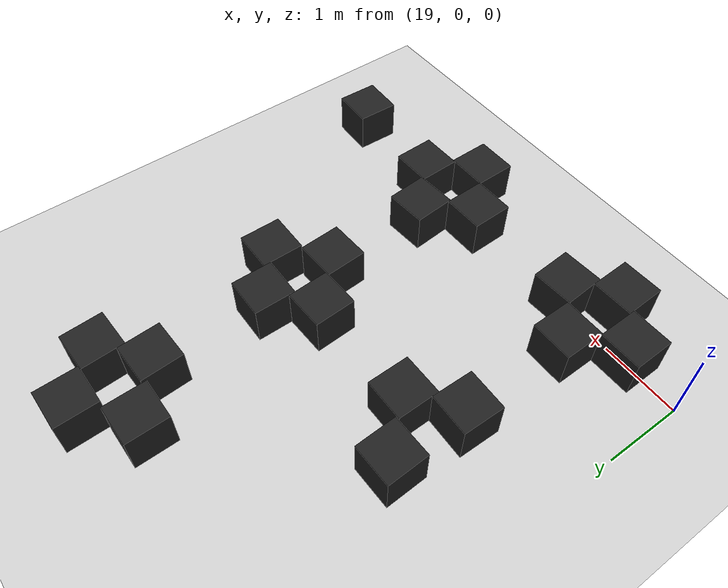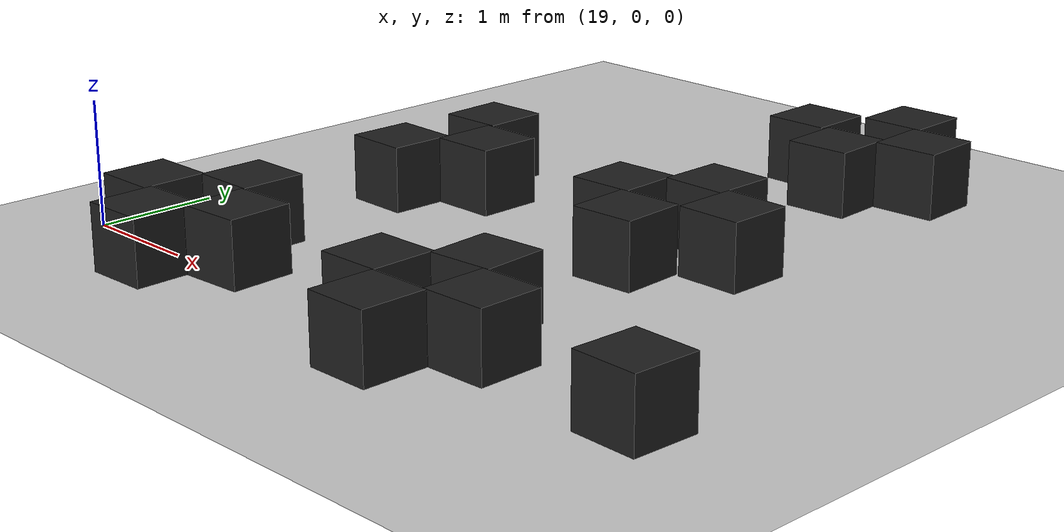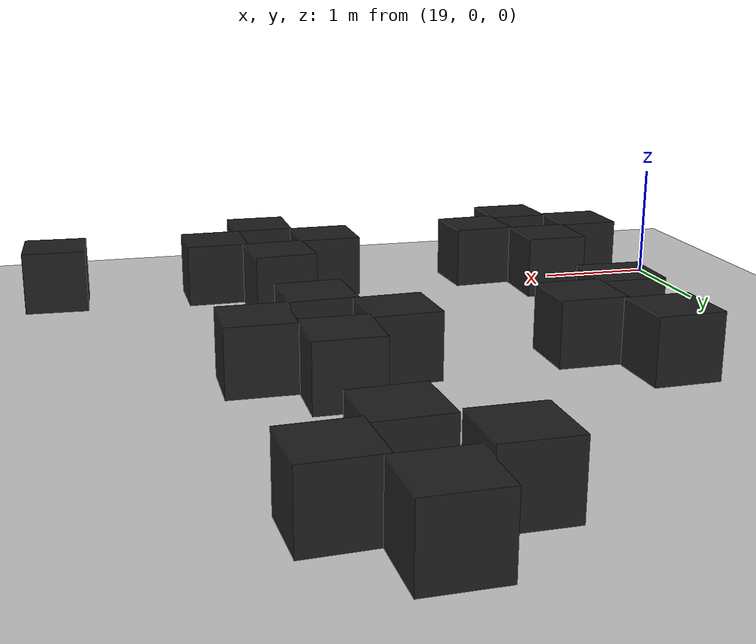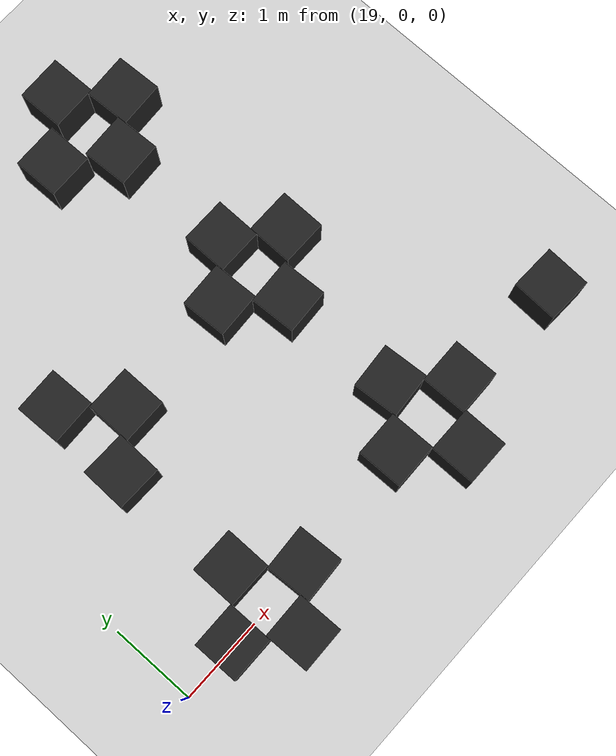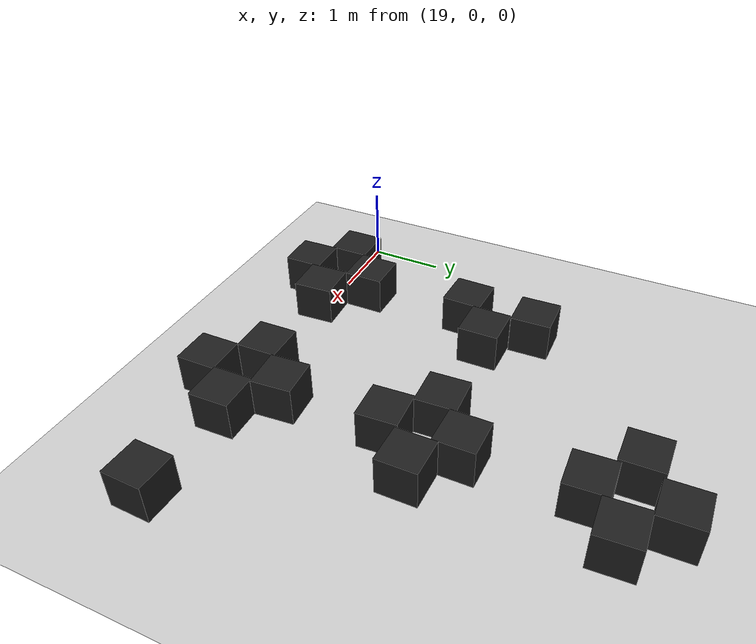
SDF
<sdf version="1.6">
 <world name="default">
  <model name="ground_plane">
   <static>1</static>
   <link name="link">
    <collision name="collision">
     <geometry><plane><normal>0 0 1</normal><size>100 100</size></plane></geometry>
     <surface>
      <contact><collide_bitmask>65535</collide_bitmask></contact>
      <friction><ode><mu>100</mu><mu2>50</mu2></ode></friction>
     </surface>
    </collision>
    <visual name="visual">
     <cast_shadows>0</cast_shadows>
     <geometry><plane><normal>0 0 1</normal><size>100 100</size></plane></geometry>
     <material>
      <script><uri>file://media/materials/scripts/gazebo.material</uri><name>Gazebo/Grey</name></script>
     </material>
    </visual>
   </link>
  </model>
  <model name="unit_box_0_clone_13">
   <link name="link">
    <inertial>
     <mass>1</mass>
     <inertia>
      <ixx>0.166667</ixx>
      <ixy>0</ixy>
      <ixz>0</ixz>
      <iyy>0.166667</iyy>
      <iyz>0</iyz>
      <izz>0.166667</izz>
     </inertia>
    </inertial>
    <visual name="visual">
     <geometry><box><size>0.530101 0.530101 0.530101</size></box></geometry>
     <material>
      <script><name>Gazebo/FlatBlack</name><uri>file://media/materials/scripts/gazebo.material</uri></script>
      <shader type="pixel"><normal_map>__default__</normal_map></shader>
      <ambient>0.1 0.1 0.1 1</ambient>
      <diffuse>0.1 0.1 0.1 1</diffuse>
      <specular>0.01 0.01 0.01 1</specular>
      <emissive>0 0 0 1</emissive>
     </material>
    </visual>
    <collision name="collision">
     <geometry><box><size>0.530101 0.530101 0.530101</size></box></geometry>
     <surface>
      <friction>
       <ode><mu>1</mu><mu2>1</mu2><fdir1>0 0 0</fdir1><slip1>0</slip1><slip2>0</slip2></ode>
       <torsional>
        <coefficient>1</coefficient>
        <patch_radius>0</patch_radius>
        <surface_radius>0</surface_radius>
        <use_patch_radius>1</use_patch_radius>
        <ode><slip>0</slip></ode>
       </torsional>
      </friction>
      <bounce><restitution_coefficient>0</restitution_coefficient><threshold>1e+06</threshold></bounce>
      <contact>
       <collide_without_contact>0</collide_without_contact>
       <collide_without_contact_bitmask>1</collide_without_contact_bitmask>
       <collide_bitmask>1</collide_bitmask>
       <ode>
        <soft_cfm>0</soft_cfm>
        <soft_erp>0.2</soft_erp>
        <kp>1e+13</kp>
        <kd>1</kd>
        <max_vel>0.01</max_vel>
        <min_depth>0</min_depth>
       </ode>
       <bullet>
        <split_impulse>1</split_impulse>
        <split_impulse_penetration_threshold>-0.01</split_impulse_penetration_threshold>
        <soft_cfm>0</soft_cfm>
        <soft_erp>0.2</soft_erp>
        <kp>1e+13</kp>
        <kd>1</kd>
       </bullet>
      </contact>
     </surface>
    </collision>
   </link>
   <static>0</static>
   <pose>22.1517 4.84185 0.314109 6e-06 -9e-06 0.013982</pose>
  </model>
  <model name="unit_box_0_clone_22_clone_14">
   <link name="link">
    <inertial>
     <mass>1</mass>
     <inertia>
      <ixx>0.166667</ixx>
      <ixy>0</ixy>
      <ixz>0</ixz>
      <iyy>0.166667</iyy>
      <iyz>0</iyz>
      <izz>0.166667</izz>
     </inertia>
    </inertial>
    <visual name="visual">
     <geometry><box><size>0.530101 0.530101 0.530101</size></box></geometry>
     <material>
      <script><name>Gazebo/FlatBlack</name><uri>file://media/materials/scripts/gazebo.material</uri></script>
      <shader type="pixel"><normal_map>__default__</normal_map></shader>
      <ambient>0.1 0.1 0.1 1</ambient>
      <diffuse>0.1 0.1 0.1 1</diffuse>
      <specular>0.01 0.01 0.01 1</specular>
      <emissive>0 0 0 1</emissive>
     </material>
    </visual>
    <collision name="collision">
     <geometry><box><size>0.530101 0.530101 0.530101</size></box></geometry>
     <surface>
      <friction>
       <ode><mu>1</mu><mu2>1</mu2><fdir1>0 0 0</fdir1><slip1>0</slip1><slip2>0</slip2></ode>
       <torsional>
        <coefficient>1</coefficient>
        <patch_radius>0</patch_radius>
        <surface_radius>0</surface_radius>
        <use_patch_radius>1</use_patch_radius>
        <ode><slip>0</slip></ode>
       </torsional>
      </friction>
      <bounce><restitution_coefficient>0</restitution_coefficient><threshold>1e+06</threshold></bounce>
      <contact>
       <collide_without_contact>0</collide_without_contact>
       <collide_without_contact_bitmask>1</collide_without_contact_bitmask>
       <collide_bitmask>1</collide_bitmask>
       <ode>
        <soft_cfm>0</soft_cfm>
        <soft_erp>0.2</soft_erp>
        <kp>1e+13</kp>
        <kd>1</kd>
        <max_vel>0.01</max_vel>
        <min_depth>0</min_depth>
       </ode>
       <bullet>
        <split_impulse>1</split_impulse>
        <split_impulse_penetration_threshold>-0.01</split_impulse_penetration_threshold>
        <soft_cfm>0</soft_cfm>
        <soft_erp>0.2</soft_erp>
        <kp>1e+13</kp>
        <kd>1</kd>
       </bullet>
      </contact>
     </surface>
    </collision>
   </link>
   <static>0</static>
   <pose>22.7398 5.34917 0.314113 0 -0 0.020812</pose>
  </model>
  <model name="unit_box_0_clone_22_clone_23">
   <link name="link">
    <inertial>
     <mass>1</mass>
     <inertia>
      <ixx>0.166667</ixx>
      <ixy>0</ixy>
      <ixz>0</ixz>
      <iyy>0.166667</iyy>
      <iyz>0</iyz>
      <izz>0.166667</izz>
     </inertia>
    </inertial>
    <visual name="visual">
     <geometry><box><size>0.530101 0.530101 0.530101</size></box></geometry>
     <material>
      <script><name>Gazebo/FlatBlack</name><uri>file://media/materials/scripts/gazebo.material</uri></script>
      <shader type="pixel"><normal_map>__default__</normal_map></shader>
      <ambient>0.1 0.1 0.1 1</ambient>
      <diffuse>0.1 0.1 0.1 1</diffuse>
      <specular>0.01 0.01 0.01 1</specular>
      <emissive>0 0 0 1</emissive>
     </material>
    </visual>
    <collision name="collision">
     <geometry><box><size>0.530101 0.530101 0.530101</size></box></geometry>
     <surface>
      <friction>
       <ode><mu>1</mu><mu2>1</mu2><fdir1>0 0 0</fdir1><slip1>0</slip1><slip2>0</slip2></ode>
       <torsional>
        <coefficient>1</coefficient>
        <patch_radius>0</patch_radius>
        <surface_radius>0</surface_radius>
        <use_patch_radius>1</use_patch_radius>
        <ode><slip>0</slip></ode>
       </torsional>
      </friction>
      <bounce><restitution_coefficient>0</restitution_coefficient><threshold>1e+06</threshold></bounce>
      <contact>
       <collide_without_contact>0</collide_without_contact>
       <collide_without_contact_bitmask>1</collide_without_contact_bitmask>
       <collide_bitmask>1</collide_bitmask>
       <ode>
        <soft_cfm>0</soft_cfm>
        <soft_erp>0.2</soft_erp>
        <kp>1e+13</kp>
        <kd>1</kd>
        <max_vel>0.01</max_vel>
        <min_depth>0</min_depth>
       </ode>
       <bullet>
        <split_impulse>1</split_impulse>
        <split_impulse_penetration_threshold>-0.01</split_impulse_penetration_threshold>
        <soft_cfm>0</soft_cfm>
        <soft_erp>0.2</soft_erp>
        <kp>1e+13</kp>
        <kd>1</kd>
       </bullet>
      </contact>
     </surface>
    </collision>
   </link>
   <static>0</static>
   <pose>22.7259 4.38549 0.314108 -7e-06 1.1e-05 0.047972</pose>
  </model>
  <model name="unit_box_0_clone_22_clone_24">
   <link name="link">
    <inertial>
     <mass>1</mass>
     <inertia>
      <ixx>0.166667</ixx>
      <ixy>0</ixy>
      <ixz>0</ixz>
      <iyy>0.166667</iyy>
      <iyz>0</iyz>
      <izz>0.166667</izz>
     </inertia>
    </inertial>
    <visual name="visual">
     <geometry><box><size>0.530101 0.530101 0.530101</size></box></geometry>
     <material>
      <script><name>Gazebo/FlatBlack</name><uri>file://media/materials/scripts/gazebo.material</uri></script>
      <shader type="pixel"><normal_map>__default__</normal_map></shader>
      <ambient>0.1 0.1 0.1 1</ambient>
      <diffuse>0.1 0.1 0.1 1</diffuse>
      <specular>0.01 0.01 0.01 1</specular>
      <emissive>0 0 0 1</emissive>
     </material>
    </visual>
    <collision name="collision">
     <geometry><box><size>0.530101 0.530101 0.530101</size></box></geometry>
     <surface>
      <friction>
       <ode><mu>1</mu><mu2>1</mu2><fdir1>0 0 0</fdir1><slip1>0</slip1><slip2>0</slip2></ode>
       <torsional>
        <coefficient>1</coefficient>
        <patch_radius>0</patch_radius>
        <surface_radius>0</surface_radius>
        <use_patch_radius>1</use_patch_radius>
        <ode><slip>0</slip></ode>
       </torsional>
      </friction>
      <bounce><restitution_coefficient>0</restitution_coefficient><threshold>1e+06</threshold></bounce>
      <contact>
       <collide_without_contact>0</collide_without_contact>
       <collide_without_contact_bitmask>1</collide_without_contact_bitmask>
       <collide_bitmask>1</collide_bitmask>
       <ode>
        <soft_cfm>0</soft_cfm>
        <soft_erp>0.2</soft_erp>
        <kp>1e+13</kp>
        <kd>1</kd>
        <max_vel>0.01</max_vel>
        <min_depth>0</min_depth>
       </ode>
       <bullet>
        <split_impulse>1</split_impulse>
        <split_impulse_penetration_threshold>-0.01</split_impulse_penetration_threshold>
        <soft_cfm>0</soft_cfm>
        <soft_erp>0.2</soft_erp>
        <kp>1e+13</kp>
        <kd>1</kd>
       </bullet>
      </contact>
     </surface>
    </collision>
   </link>
   <static>0</static>
   <pose>23.2352 4.8352 0.31411 -2e-06 8e-06 0.048304</pose>
  </model>
  <model name="unit_box_0_clone_10">
   <link name="link">
    <inertial>
     <mass>1</mass>
     <inertia>
      <ixx>0.166667</ixx>
      <ixy>0</ixy>
      <ixz>0</ixz>
      <iyy>0.166667</iyy>
      <iyz>0</iyz>
      <izz>0.166667</izz>
     </inertia>
    </inertial>
    <visual name="visual">
     <geometry><box><size>0.530101 0.530101 0.530101</size></box></geometry>
     <material>
      <script><name>Gazebo/FlatBlack</name><uri>file://media/materials/scripts/gazebo.material</uri></script>
      <shader type="pixel"><normal_map>__default__</normal_map></shader>
      <ambient>0.1 0.1 0.1 1</ambient>
      <diffuse>0.1 0.1 0.1 1</diffuse>
      <specular>0.01 0.01 0.01 1</specular>
      <emissive>0 0 0 1</emissive>
     </material>
    </visual>
    <collision name="collision">
     <geometry><box><size>0.530101 0.530101 0.530101</size></box></geometry>
     <surface>
      <friction>
       <ode><mu>1</mu><mu2>1</mu2><fdir1>0 0 0</fdir1><slip1>0</slip1><slip2>0</slip2></ode>
       <torsional>
        <coefficient>1</coefficient>
        <patch_radius>0</patch_radius>
        <surface_radius>0</surface_radius>
        <use_patch_radius>1</use_patch_radius>
        <ode><slip>0</slip></ode>
       </torsional>
      </friction>
      <bounce><restitution_coefficient>0</restitution_coefficient><threshold>1e+06</threshold></bounce>
      <contact>
       <collide_without_contact>0</collide_without_contact>
       <collide_without_contact_bitmask>1</collide_without_contact_bitmask>
       <collide_bitmask>1</collide_bitmask>
       <ode>
        <soft_cfm>0</soft_cfm>
        <soft_erp>0.2</soft_erp>
        <kp>1e+13</kp>
        <kd>1</kd>
        <max_vel>0.01</max_vel>
        <min_depth>0</min_depth>
       </ode>
       <bullet>
        <split_impulse>1</split_impulse>
        <split_impulse_penetration_threshold>-0.01</split_impulse_penetration_threshold>
        <soft_cfm>0</soft_cfm>
        <soft_erp>0.2</soft_erp>
        <kp>1e+13</kp>
        <kd>1</kd>
       </bullet>
      </contact>
     </surface>
    </collision>
   </link>
   <static>0</static>
   <pose>20.223 2.01564 0.314111 6e-06 -1.1e-05 -0.022504</pose>
  </model>
  <model name="unit_box_0_clone_28">
   <link name="link">
    <inertial>
     <mass>1</mass>
     <inertia>
      <ixx>0.166667</ixx>
      <ixy>0</ixy>
      <ixz>0</ixz>
      <iyy>0.166667</iyy>
      <iyz>0</iyz>
      <izz>0.166667</izz>
     </inertia>
    </inertial>
    <visual name="visual">
     <geometry><box><size>0.530101 0.530101 0.530101</size></box></geometry>
     <material>
      <script><name>Gazebo/FlatBlack</name><uri>file://media/materials/scripts/gazebo.material</uri></script>
      <shader type="pixel"><normal_map>__default__</normal_map></shader>
      <ambient>0.1 0.1 0.1 1</ambient>
      <diffuse>0.1 0.1 0.1 1</diffuse>
      <specular>0.01 0.01 0.01 1</specular>
      <emissive>0 0 0 1</emissive>
     </material>
    </visual>
    <collision name="collision">
     <geometry><box><size>0.530101 0.530101 0.530101</size></box></geometry>
     <surface>
      <friction>
       <ode><mu>1</mu><mu2>1</mu2><fdir1>0 0 0</fdir1><slip1>0</slip1><slip2>0</slip2></ode>
       <torsional>
        <coefficient>1</coefficient>
        <patch_radius>0</patch_radius>
        <surface_radius>0</surface_radius>
        <use_patch_radius>1</use_patch_radius>
        <ode><slip>0</slip></ode>
       </torsional>
      </friction>
      <bounce><restitution_coefficient>0</restitution_coefficient><threshold>1e+06</threshold></bounce>
      <contact>
       <collide_without_contact>0</collide_without_contact>
       <collide_without_contact_bitmask>1</collide_without_contact_bitmask>
       <collide_bitmask>1</collide_bitmask>
       <ode>
        <soft_cfm>0</soft_cfm>
        <soft_erp>0.2</soft_erp>
        <kp>1e+13</kp>
        <kd>1</kd>
        <max_vel>0.01</max_vel>
        <min_depth>0</min_depth>
       </ode>
       <bullet>
        <split_impulse>1</split_impulse>
        <split_impulse_penetration_threshold>-0.01</split_impulse_penetration_threshold>
        <soft_cfm>0</soft_cfm>
        <soft_erp>0.2</soft_erp>
        <kp>1e+13</kp>
        <kd>1</kd>
       </bullet>
      </contact>
     </surface>
    </collision>
   </link>
   <static>0</static>
   <pose>20.2602 2.98412 0.31411 -2e-06 8e-06 0.028547</pose>
  </model>
  <model name="unit_box_0_clone_22_clone_15_clone_6">
   <link name="link">
    <inertial>
     <mass>1</mass>
     <inertia>
      <ixx>0.166667</ixx>
      <ixy>0</ixy>
      <ixz>0</ixz>
      <iyy>0.166667</iyy>
      <iyz>0</iyz>
      <izz>0.166667</izz>
     </inertia>
    </inertial>
    <visual name="visual">
     <geometry><box><size>0.530101 0.530101 0.530101</size></box></geometry>
     <material>
      <script><name>Gazebo/FlatBlack</name><uri>file://media/materials/scripts/gazebo.material</uri></script>
      <shader type="pixel"><normal_map>__default__</normal_map></shader>
      <ambient>0.1 0.1 0.1 1</ambient>
      <diffuse>0.1 0.1 0.1 1</diffuse>
      <specular>0.01 0.01 0.01 1</specular>
      <emissive>0 0 0 1</emissive>
     </material>
    </visual>
    <collision name="collision">
     <geometry><box><size>0.530101 0.530101 0.530101</size></box></geometry>
     <surface>
      <friction>
       <ode><mu>1</mu><mu2>1</mu2><fdir1>0 0 0</fdir1><slip1>0</slip1><slip2>0</slip2></ode>
       <torsional>
        <coefficient>1</coefficient>
        <patch_radius>0</patch_radius>
        <surface_radius>0</surface_radius>
        <use_patch_radius>1</use_patch_radius>
        <ode><slip>0</slip></ode>
       </torsional>
      </friction>
      <bounce><restitution_coefficient>0</restitution_coefficient><threshold>1e+06</threshold></bounce>
      <contact>
       <collide_without_contact>0</collide_without_contact>
       <collide_without_contact_bitmask>1</collide_without_contact_bitmask>
       <collide_bitmask>1</collide_bitmask>
       <ode>
        <soft_cfm>0</soft_cfm>
        <soft_erp>0.2</soft_erp>
        <kp>1e+13</kp>
        <kd>1</kd>
        <max_vel>0.01</max_vel>
        <min_depth>0</min_depth>
       </ode>
       <bullet>
        <split_impulse>1</split_impulse>
        <split_impulse_penetration_threshold>-0.01</split_impulse_penetration_threshold>
        <soft_cfm>0</soft_cfm>
        <soft_erp>0.2</soft_erp>
        <kp>1e+13</kp>
        <kd>1</kd>
       </bullet>
      </contact>
     </surface>
    </collision>
   </link>
   <static>0</static>
   <pose>20.7581 2.4489 0.314111 2e-06 -7e-06 0.00498</pose>
  </model>
  <model name="unit_box_0_clone_22_clone_15_clone_7">
   <link name="link">
    <inertial>
     <mass>1</mass>
     <inertia>
      <ixx>0.166667</ixx>
      <ixy>0</ixy>
      <ixz>0</ixz>
      <iyy>0.166667</iyy>
      <iyz>0</iyz>
      <izz>0.166667</izz>
     </inertia>
    </inertial>
    <visual name="visual">
     <geometry><box><size>0.530101 0.530101 0.530101</size></box></geometry>
     <material>
      <script><name>Gazebo/FlatBlack</name><uri>file://media/materials/scripts/gazebo.material</uri></script>
      <shader type="pixel"><normal_map>__default__</normal_map></shader>
      <ambient>0.1 0.1 0.1 1</ambient>
      <diffuse>0.1 0.1 0.1 1</diffuse>
      <specular>0.01 0.01 0.01 1</specular>
      <emissive>0 0 0 1</emissive>
     </material>
    </visual>
    <collision name="collision">
     <geometry><box><size>0.530101 0.530101 0.530101</size></box></geometry>
     <surface>
      <friction>
       <ode><mu>1</mu><mu2>1</mu2><fdir1>0 0 0</fdir1><slip1>0</slip1><slip2>0</slip2></ode>
       <torsional>
        <coefficient>1</coefficient>
        <patch_radius>0</patch_radius>
        <surface_radius>0</surface_radius>
        <use_patch_radius>1</use_patch_radius>
        <ode><slip>0</slip></ode>
       </torsional>
      </friction>
      <bounce><restitution_coefficient>0</restitution_coefficient><threshold>1e+06</threshold></bounce>
      <contact>
       <collide_without_contact>0</collide_without_contact>
       <collide_without_contact_bitmask>1</collide_without_contact_bitmask>
       <collide_bitmask>1</collide_bitmask>
       <ode>
        <soft_cfm>0</soft_cfm>
        <soft_erp>0.2</soft_erp>
        <kp>1e+13</kp>
        <kd>1</kd>
        <max_vel>0.01</max_vel>
        <min_depth>0</min_depth>
       </ode>
       <bullet>
        <split_impulse>1</split_impulse>
        <split_impulse_penetration_threshold>-0.01</split_impulse_penetration_threshold>
        <soft_cfm>0</soft_cfm>
        <soft_erp>0.2</soft_erp>
        <kp>1e+13</kp>
        <kd>1</kd>
       </bullet>
      </contact>
     </surface>
    </collision>
   </link>
   <static>0</static>
   <pose>20.7749 0.00737 0.314107 -8e-06 -8e-06 0.054832</pose>
  </model>
  <model name="unit_box_0_clone_22_clone_15_clone_8">
   <link name="link">
    <inertial>
     <mass>1</mass>
     <inertia>
      <ixx>0.166667</ixx>
      <ixy>0</ixy>
      <ixz>0</ixz>
      <iyy>0.166667</iyy>
      <iyz>0</iyz>
      <izz>0.166667</izz>
     </inertia>
    </inertial>
    <visual name="visual">
     <geometry><box><size>0.530101 0.530101 0.530101</size></box></geometry>
     <material>
      <script><name>Gazebo/FlatBlack</name><uri>file://media/materials/scripts/gazebo.material</uri></script>
      <shader type="pixel"><normal_map>__default__</normal_map></shader>
      <ambient>0.1 0.1 0.1 1</ambient>
      <diffuse>0.1 0.1 0.1 1</diffuse>
      <specular>0.01 0.01 0.01 1</specular>
      <emissive>0 0 0 1</emissive>
     </material>
    </visual>
    <collision name="collision">
     <geometry><box><size>0.530101 0.530101 0.530101</size></box></geometry>
     <surface>
      <friction>
       <ode><mu>1</mu><mu2>1</mu2><fdir1>0 0 0</fdir1><slip1>0</slip1><slip2>0</slip2></ode>
       <torsional>
        <coefficient>1</coefficient>
        <patch_radius>0</patch_radius>
        <surface_radius>0</surface_radius>
        <use_patch_radius>1</use_patch_radius>
        <ode><slip>0</slip></ode>
       </torsional>
      </friction>
      <bounce><restitution_coefficient>0</restitution_coefficient><threshold>1e+06</threshold></bounce>
      <contact>
       <collide_without_contact>0</collide_without_contact>
       <collide_without_contact_bitmask>1</collide_without_contact_bitmask>
       <collide_bitmask>1</collide_bitmask>
       <ode>
        <soft_cfm>0</soft_cfm>
        <soft_erp>0.2</soft_erp>
        <kp>1e+13</kp>
        <kd>1</kd>
        <max_vel>0.01</max_vel>
        <min_depth>0</min_depth>
       </ode>
       <bullet>
        <split_impulse>1</split_impulse>
        <split_impulse_penetration_threshold>-0.01</split_impulse_penetration_threshold>
        <soft_cfm>0</soft_cfm>
        <soft_erp>0.2</soft_erp>
        <kp>1e+13</kp>
        <kd>1</kd>
       </bullet>
      </contact>
     </surface>
    </collision>
   </link>
   <static>0</static>
   <pose>20.2511 0.531605 0.314111 2e-06 -7e-06 0.001611</pose>
  </model>
  <model name="unit_box_0_clone_22_clone_15_clone_9">
   <link name="link">
    <inertial>
     <mass>1</mass>
     <inertia>
      <ixx>0.166667</ixx>
      <ixy>0</ixy>
      <ixz>0</ixz>
      <iyy>0.166667</iyy>
      <iyz>0</iyz>
      <izz>0.166667</izz>
     </inertia>
    </inertial>
    <visual name="visual">
     <geometry><box><size>0.530101 0.530101 0.530101</size></box></geometry>
     <material>
      <script><name>Gazebo/FlatBlack</name><uri>file://media/materials/scripts/gazebo.material</uri></script>
      <shader type="pixel"><normal_map>__default__</normal_map></shader>
      <ambient>0.1 0.1 0.1 1</ambient>
      <diffuse>0.1 0.1 0.1 1</diffuse>
      <specular>0.01 0.01 0.01 1</specular>
      <emissive>0 0 0 1</emissive>
     </material>
    </visual>
    <collision name="collision">
     <geometry><box><size>0.530101 0.530101 0.530101</size></box></geometry>
     <surface>
      <friction>
       <ode><mu>1</mu><mu2>1</mu2><fdir1>0 0 0</fdir1><slip1>0</slip1><slip2>0</slip2></ode>
       <torsional>
        <coefficient>1</coefficient>
        <patch_radius>0</patch_radius>
        <surface_radius>0</surface_radius>
        <use_patch_radius>1</use_patch_radius>
        <ode><slip>0</slip></ode>
       </torsional>
      </friction>
      <bounce><restitution_coefficient>0</restitution_coefficient><threshold>1e+06</threshold></bounce>
      <contact>
       <collide_without_contact>0</collide_without_contact>
       <collide_without_contact_bitmask>1</collide_without_contact_bitmask>
       <collide_bitmask>1</collide_bitmask>
       <ode>
        <soft_cfm>0</soft_cfm>
        <soft_erp>0.2</soft_erp>
        <kp>1e+13</kp>
        <kd>1</kd>
        <max_vel>0.01</max_vel>
        <min_depth>0</min_depth>
       </ode>
       <bullet>
        <split_impulse>1</split_impulse>
        <split_impulse_penetration_threshold>-0.01</split_impulse_penetration_threshold>
        <soft_cfm>0</soft_cfm>
        <soft_erp>0.2</soft_erp>
        <kp>1e+13</kp>
        <kd>1</kd>
       </bullet>
      </contact>
     </surface>
    </collision>
   </link>
   <static>0</static>
   <pose>19.7223 0.018196 0.314109 6e-06 -9e-06 0.008816</pose>
  </model>
  <model name="unit_box_0_clone_22_clone_15_clone_10">
   <link name="link">
    <inertial>
     <mass>1</mass>
     <inertia>
      <ixx>0.166667</ixx>
      <ixy>0</ixy>
      <ixz>0</ixz>
      <iyy>0.166667</iyy>
      <iyz>0</iyz>
      <izz>0.166667</izz>
     </inertia>
    </inertial>
    <visual name="visual">
     <geometry><box><size>0.530101 0.530101 0.530101</size></box></geometry>
     <material>
      <script><name>Gazebo/FlatBlack</name><uri>file://media/materials/scripts/gazebo.material</uri></script>
      <shader type="pixel"><normal_map>__default__</normal_map></shader>
      <ambient>0.1 0.1 0.1 1</ambient>
      <diffuse>0.1 0.1 0.1 1</diffuse>
      <specular>0.01 0.01 0.01 1</specular>
      <emissive>0 0 0 1</emissive>
     </material>
    </visual>
    <collision name="collision">
     <geometry><box><size>0.530101 0.530101 0.530101</size></box></geometry>
     <surface>
      <friction>
       <ode><mu>1</mu><mu2>1</mu2><fdir1>0 0 0</fdir1><slip1>0</slip1><slip2>0</slip2></ode>
       <torsional>
        <coefficient>1</coefficient>
        <patch_radius>0</patch_radius>
        <surface_radius>0</surface_radius>
        <use_patch_radius>1</use_patch_radius>
        <ode><slip>0</slip></ode>
       </torsional>
      </friction>
      <bounce><restitution_coefficient>0</restitution_coefficient><threshold>1e+06</threshold></bounce>
      <contact>
       <collide_without_contact>0</collide_without_contact>
       <collide_without_contact_bitmask>1</collide_without_contact_bitmask>
       <collide_bitmask>1</collide_bitmask>
       <ode>
        <soft_cfm>0</soft_cfm>
        <soft_erp>0.2</soft_erp>
        <kp>1e+13</kp>
        <kd>1</kd>
        <max_vel>0.01</max_vel>
        <min_depth>0</min_depth>
       </ode>
       <bullet>
        <split_impulse>1</split_impulse>
        <split_impulse_penetration_threshold>-0.01</split_impulse_penetration_threshold>
        <soft_cfm>0</soft_cfm>
        <soft_erp>0.2</soft_erp>
        <kp>1e+13</kp>
        <kd>1</kd>
       </bullet>
      </contact>
     </surface>
    </collision>
   </link>
   <static>0</static>
   <pose>20.2604 -0.440273 0.314114 6e-06 -0 0.023748</pose>
  </model>
  <model name="unit_box_0_clone_22_clone_15_clone_11">
   <link name="link">
    <inertial>
     <mass>1</mass>
     <inertia>
      <ixx>0.166667</ixx>
      <ixy>0</ixy>
      <ixz>0</ixz>
      <iyy>0.166667</iyy>
      <iyz>0</iyz>
      <izz>0.166667</izz>
     </inertia>
    </inertial>
    <visual name="visual">
     <geometry><box><size>0.530101 0.530101 0.530101</size></box></geometry>
     <material>
      <script><name>Gazebo/FlatBlack</name><uri>file://media/materials/scripts/gazebo.material</uri></script>
      <shader type="pixel"><normal_map>__default__</normal_map></shader>
      <ambient>0.1 0.1 0.1 1</ambient>
      <diffuse>0.1 0.1 0.1 1</diffuse>
      <specular>0.01 0.01 0.01 1</specular>
      <emissive>0 0 0 1</emissive>
     </material>
    </visual>
    <collision name="collision">
     <geometry><box><size>0.530101 0.530101 0.530101</size></box></geometry>
     <surface>
      <friction>
       <ode><mu>1</mu><mu2>1</mu2><fdir1>0 0 0</fdir1><slip1>0</slip1><slip2>0</slip2></ode>
       <torsional>
        <coefficient>1</coefficient>
        <patch_radius>0</patch_radius>
        <surface_radius>0</surface_radius>
        <use_patch_radius>1</use_patch_radius>
        <ode><slip>0</slip></ode>
       </torsional>
      </friction>
      <bounce><restitution_coefficient>0</restitution_coefficient><threshold>1e+06</threshold></bounce>
      <contact>
       <collide_without_contact>0</collide_without_contact>
       <collide_without_contact_bitmask>1</collide_without_contact_bitmask>
       <collide_bitmask>1</collide_bitmask>
       <ode>
        <soft_cfm>0</soft_cfm>
        <soft_erp>0.2</soft_erp>
        <kp>1e+13</kp>
        <kd>1</kd>
        <max_vel>0.01</max_vel>
        <min_depth>0</min_depth>
       </ode>
       <bullet>
        <split_impulse>1</split_impulse>
        <split_impulse_penetration_threshold>-0.01</split_impulse_penetration_threshold>
        <soft_cfm>0</soft_cfm>
        <soft_erp>0.2</soft_erp>
        <kp>1e+13</kp>
        <kd>1</kd>
       </bullet>
      </contact>
     </surface>
    </collision>
   </link>
   <static>0</static>
   <pose>23.2679 2.5019 0.314107 -8e-06 -8e-06 -0.00347</pose>
  </model>
  <model name="unit_box_0_clone_22_clone_15_clone_12">
   <link name="link">
    <inertial>
     <mass>1</mass>
     <inertia>
      <ixx>0.166667</ixx>
      <ixy>0</ixy>
      <ixz>0</ixz>
      <iyy>0.166667</iyy>
      <iyz>0</iyz>
      <izz>0.166667</izz>
     </inertia>
    </inertial>
    <visual name="visual">
     <geometry><box><size>0.530101 0.530101 0.530101</size></box></geometry>
     <material>
      <script><name>Gazebo/FlatBlack</name><uri>file://media/materials/scripts/gazebo.material</uri></script>
      <shader type="pixel"><normal_map>__default__</normal_map></shader>
      <ambient>0.1 0.1 0.1 1</ambient>
      <diffuse>0.1 0.1 0.1 1</diffuse>
      <specular>0.01 0.01 0.01 1</specular>
      <emissive>0 0 0 1</emissive>
     </material>
    </visual>
    <collision name="collision">
     <geometry><box><size>0.530101 0.530101 0.530101</size></box></geometry>
     <surface>
      <friction>
       <ode><mu>1</mu><mu2>1</mu2><fdir1>0 0 0</fdir1><slip1>0</slip1><slip2>0</slip2></ode>
       <torsional>
        <coefficient>1</coefficient>
        <patch_radius>0</patch_radius>
        <surface_radius>0</surface_radius>
        <use_patch_radius>1</use_patch_radius>
        <ode><slip>0</slip></ode>
       </torsional>
      </friction>
      <bounce><restitution_coefficient>0</restitution_coefficient><threshold>1e+06</threshold></bounce>
      <contact>
       <collide_without_contact>0</collide_without_contact>
       <collide_without_contact_bitmask>1</collide_without_contact_bitmask>
       <collide_bitmask>1</collide_bitmask>
       <ode>
        <soft_cfm>0</soft_cfm>
        <soft_erp>0.2</soft_erp>
        <kp>1e+13</kp>
        <kd>1</kd>
        <max_vel>0.01</max_vel>
        <min_depth>0</min_depth>
       </ode>
       <bullet>
        <split_impulse>1</split_impulse>
        <split_impulse_penetration_threshold>-0.01</split_impulse_penetration_threshold>
        <soft_cfm>0</soft_cfm>
        <soft_erp>0.2</soft_erp>
        <kp>1e+13</kp>
        <kd>1</kd>
       </bullet>
      </contact>
     </surface>
    </collision>
   </link>
   <static>0</static>
   <pose>22.7393 2.94287 0.314108 -8e-06 8e-06 -0.003889</pose>
  </model>
  <model name="unit_box_0_clone_22_clone_15_clone_13">
   <link name="link">
    <inertial>
     <mass>1</mass>
     <inertia>
      <ixx>0.166667</ixx>
      <ixy>0</ixy>
      <ixz>0</ixz>
      <iyy>0.166667</iyy>
      <iyz>0</iyz>
      <izz>0.166667</izz>
     </inertia>
    </inertial>
    <visual name="visual">
     <geometry><box><size>0.530101 0.530101 0.530101</size></box></geometry>
     <material>
      <script><name>Gazebo/FlatBlack</name><uri>file://media/materials/scripts/gazebo.material</uri></script>
      <shader type="pixel"><normal_map>__default__</normal_map></shader>
      <ambient>0.1 0.1 0.1 1</ambient>
      <diffuse>0.1 0.1 0.1 1</diffuse>
      <specular>0.01 0.01 0.01 1</specular>
      <emissive>0 0 0 1</emissive>
     </material>
    </visual>
    <collision name="collision">
     <geometry><box><size>0.530101 0.530101 0.530101</size></box></geometry>
     <surface>
      <friction>
       <ode><mu>1</mu><mu2>1</mu2><fdir1>0 0 0</fdir1><slip1>0</slip1><slip2>0</slip2></ode>
       <torsional>
        <coefficient>1</coefficient>
        <patch_radius>0</patch_radius>
        <surface_radius>0</surface_radius>
        <use_patch_radius>1</use_patch_radius>
        <ode><slip>0</slip></ode>
       </torsional>
      </friction>
      <bounce><restitution_coefficient>0</restitution_coefficient><threshold>1e+06</threshold></bounce>
      <contact>
       <collide_without_contact>0</collide_without_contact>
       <collide_without_contact_bitmask>1</collide_without_contact_bitmask>
       <collide_bitmask>1</collide_bitmask>
       <ode>
        <soft_cfm>0</soft_cfm>
        <soft_erp>0.2</soft_erp>
        <kp>1e+13</kp>
        <kd>1</kd>
        <max_vel>0.01</max_vel>
        <min_depth>0</min_depth>
       </ode>
       <bullet>
        <split_impulse>1</split_impulse>
        <split_impulse_penetration_threshold>-0.01</split_impulse_penetration_threshold>
        <soft_cfm>0</soft_cfm>
        <soft_erp>0.2</soft_erp>
        <kp>1e+13</kp>
        <kd>1</kd>
       </bullet>
      </contact>
     </surface>
    </collision>
   </link>
   <static>0</static>
   <pose>22.7205 1.97813 0.31411 -2e-06 8e-06 0.052947</pose>
  </model>
  <model name="unit_box_0_clone_22_clone_15_clone_14">
   <link name="link">
    <inertial>
     <mass>1</mass>
     <inertia>
      <ixx>0.166667</ixx>
      <ixy>0</ixy>
      <ixz>0</ixz>
      <iyy>0.166667</iyy>
      <iyz>0</iyz>
      <izz>0.166667</izz>
     </inertia>
    </inertial>
    <visual name="visual">
     <geometry><box><size>0.530101 0.530101 0.530101</size></box></geometry>
     <material>
      <script><name>Gazebo/FlatBlack</name><uri>file://media/materials/scripts/gazebo.material</uri></script>
      <shader type="pixel"><normal_map>__default__</normal_map></shader>
      <ambient>0.1 0.1 0.1 1</ambient>
      <diffuse>0.1 0.1 0.1 1</diffuse>
      <specular>0.01 0.01 0.01 1</specular>
      <emissive>0 0 0 1</emissive>
     </material>
    </visual>
    <collision name="collision">
     <geometry><box><size>0.530101 0.530101 0.530101</size></box></geometry>
     <surface>
      <friction>
       <ode><mu>1</mu><mu2>1</mu2><fdir1>0 0 0</fdir1><slip1>0</slip1><slip2>0</slip2></ode>
       <torsional>
        <coefficient>1</coefficient>
        <patch_radius>0</patch_radius>
        <surface_radius>0</surface_radius>
        <use_patch_radius>1</use_patch_radius>
        <ode><slip>0</slip></ode>
       </torsional>
      </friction>
      <bounce><restitution_coefficient>0</restitution_coefficient><threshold>1e+06</threshold></bounce>
      <contact>
       <collide_without_contact>0</collide_without_contact>
       <collide_without_contact_bitmask>1</collide_without_contact_bitmask>
       <collide_bitmask>1</collide_bitmask>
       <ode>
        <soft_cfm>0</soft_cfm>
        <soft_erp>0.2</soft_erp>
        <kp>1e+13</kp>
        <kd>1</kd>
        <max_vel>0.01</max_vel>
        <min_depth>0</min_depth>
       </ode>
       <bullet>
        <split_impulse>1</split_impulse>
        <split_impulse_penetration_threshold>-0.01</split_impulse_penetration_threshold>
        <soft_cfm>0</soft_cfm>
        <soft_erp>0.2</soft_erp>
        <kp>1e+13</kp>
        <kd>1</kd>
       </bullet>
      </contact>
     </surface>
    </collision>
   </link>
   <static>0</static>
   <pose>22.2166 2.48697 0.311836 -4e-06 7e-06 0.04546</pose>
  </model>
  <model name="unit_box_0_clone_22_clone_15_clone_15">
   <link name="link">
    <inertial>
     <mass>1</mass>
     <inertia>
      <ixx>0.166667</ixx>
      <ixy>0</ixy>
      <ixz>0</ixz>
      <iyy>0.166667</iyy>
      <iyz>0</iyz>
      <izz>0.166667</izz>
     </inertia>
    </inertial>
    <visual name="visual">
     <geometry><box><size>0.530101 0.530101 0.530101</size></box></geometry>
     <material>
      <script><name>Gazebo/FlatBlack</name><uri>file://media/materials/scripts/gazebo.material</uri></script>
      <shader type="pixel"><normal_map>__default__</normal_map></shader>
      <ambient>0.1 0.1 0.1 1</ambient>
      <diffuse>0.1 0.1 0.1 1</diffuse>
      <specular>0.01 0.01 0.01 1</specular>
      <emissive>0 0 0 1</emissive>
     </material>
    </visual>
    <collision name="collision">
     <geometry><box><size>0.530101 0.530101 0.530101</size></box></geometry>
     <surface>
      <friction>
       <ode><mu>1</mu><mu2>1</mu2><fdir1>0 0 0</fdir1><slip1>0</slip1><slip2>0</slip2></ode>
       <torsional>
        <coefficient>1</coefficient>
        <patch_radius>0</patch_radius>
        <surface_radius>0</surface_radius>
        <use_patch_radius>1</use_patch_radius>
        <ode><slip>0</slip></ode>
       </torsional>
      </friction>
      <bounce><restitution_coefficient>0</restitution_coefficient><threshold>1e+06</threshold></bounce>
      <contact>
       <collide_without_contact>0</collide_without_contact>
       <collide_without_contact_bitmask>1</collide_without_contact_bitmask>
       <collide_bitmask>1</collide_bitmask>
       <ode>
        <soft_cfm>0</soft_cfm>
        <soft_erp>0.2</soft_erp>
        <kp>1e+13</kp>
        <kd>1</kd>
        <max_vel>0.01</max_vel>
        <min_depth>0</min_depth>
       </ode>
       <bullet>
        <split_impulse>1</split_impulse>
        <split_impulse_penetration_threshold>-0.01</split_impulse_penetration_threshold>
        <soft_cfm>0</soft_cfm>
        <soft_erp>0.2</soft_erp>
        <kp>1e+13</kp>
        <kd>1</kd>
       </bullet>
      </contact>
     </surface>
    </collision>
   </link>
   <static>0</static>
   <pose>22.7608 0.596406 0.314109 6e-06 -9e-06 0.075395</pose>
  </model>
  <model name="unit_box_0_clone_22_clone_15_clone_16">
   <link name="link">
    <inertial>
     <mass>1</mass>
     <inertia>
      <ixx>0.166667</ixx>
      <ixy>0</ixy>
      <ixz>0</ixz>
      <iyy>0.166667</iyy>
      <iyz>0</iyz>
      <izz>0.166667</izz>
     </inertia>
    </inertial>
    <visual name="visual">
     <geometry><box><size>0.530101 0.530101 0.530101</size></box></geometry>
     <material>
      <script><name>Gazebo/FlatBlack</name><uri>file://media/materials/scripts/gazebo.material</uri></script>
      <shader type="pixel"><normal_map>__default__</normal_map></shader>
      <ambient>0.1 0.1 0.1 1</ambient>
      <diffuse>0.1 0.1 0.1 1</diffuse>
      <specular>0.01 0.01 0.01 1</specular>
      <emissive>0 0 0 1</emissive>
     </material>
    </visual>
    <collision name="collision">
     <geometry><box><size>0.530101 0.530101 0.530101</size></box></geometry>
     <surface>
      <friction>
       <ode><mu>1</mu><mu2>1</mu2><fdir1>0 0 0</fdir1><slip1>0</slip1><slip2>0</slip2></ode>
       <torsional>
        <coefficient>1</coefficient>
        <patch_radius>0</patch_radius>
        <surface_radius>0</surface_radius>
        <use_patch_radius>1</use_patch_radius>
        <ode><slip>0</slip></ode>
       </torsional>
      </friction>
      <bounce><restitution_coefficient>0</restitution_coefficient><threshold>1e+06</threshold></bounce>
      <contact>
       <collide_without_contact>0</collide_without_contact>
       <collide_without_contact_bitmask>1</collide_without_contact_bitmask>
       <collide_bitmask>1</collide_bitmask>
       <ode>
        <soft_cfm>0</soft_cfm>
        <soft_erp>0.2</soft_erp>
        <kp>1e+13</kp>
        <kd>1</kd>
        <max_vel>0.01</max_vel>
        <min_depth>0</min_depth>
       </ode>
       <bullet>
        <split_impulse>1</split_impulse>
        <split_impulse_penetration_threshold>-0.01</split_impulse_penetration_threshold>
        <soft_cfm>0</soft_cfm>
        <soft_erp>0.2</soft_erp>
        <kp>1e+13</kp>
        <kd>1</kd>
       </bullet>
      </contact>
     </surface>
    </collision>
   </link>
   <static>0</static>
   <pose>23.2683 0.088848 0.31411 7e-06 4e-06 0.020189</pose>
  </model>
  <model name="unit_box_0_clone_22_clone_15_clone_17">
   <link name="link">
    <inertial>
     <mass>1</mass>
     <inertia>
      <ixx>0.166667</ixx>
      <ixy>0</ixy>
      <ixz>0</ixz>
      <iyy>0.166667</iyy>
      <iyz>0</iyz>
      <izz>0.166667</izz>
     </inertia>
    </inertial>
    <visual name="visual">
     <geometry><box><size>0.530101 0.530101 0.530101</size></box></geometry>
     <material>
      <script><name>Gazebo/FlatBlack</name><uri>file://media/materials/scripts/gazebo.material</uri></script>
      <shader type="pixel"><normal_map>__default__</normal_map></shader>
      <ambient>0.1 0.1 0.1 1</ambient>
      <diffuse>0.1 0.1 0.1 1</diffuse>
      <specular>0.01 0.01 0.01 1</specular>
      <emissive>0 0 0 1</emissive>
     </material>
    </visual>
    <collision name="collision">
     <geometry><box><size>0.530101 0.530101 0.530101</size></box></geometry>
     <surface>
      <friction>
       <ode><mu>1</mu><mu2>1</mu2><fdir1>0 0 0</fdir1><slip1>0</slip1><slip2>0</slip2></ode>
       <torsional>
        <coefficient>1</coefficient>
        <patch_radius>0</patch_radius>
        <surface_radius>0</surface_radius>
        <use_patch_radius>1</use_patch_radius>
        <ode><slip>0</slip></ode>
       </torsional>
      </friction>
      <bounce><restitution_coefficient>0</restitution_coefficient><threshold>1e+06</threshold></bounce>
      <contact>
       <collide_without_contact>0</collide_without_contact>
       <collide_without_contact_bitmask>1</collide_without_contact_bitmask>
       <collide_bitmask>1</collide_bitmask>
       <ode>
        <soft_cfm>0</soft_cfm>
        <soft_erp>0.2</soft_erp>
        <kp>1e+13</kp>
        <kd>1</kd>
        <max_vel>0.01</max_vel>
        <min_depth>0</min_depth>
       </ode>
       <bullet>
        <split_impulse>1</split_impulse>
        <split_impulse_penetration_threshold>-0.01</split_impulse_penetration_threshold>
        <soft_cfm>0</soft_cfm>
        <soft_erp>0.2</soft_erp>
        <kp>1e+13</kp>
        <kd>1</kd>
       </bullet>
      </contact>
     </surface>
    </collision>
   </link>
   <static>0</static>
   <pose>22.254 0.078487 0.314111 2e-06 -7e-06 0.020281</pose>
  </model>
  <model name="unit_box_0_clone_22_clone_15_clone_18">
   <link name="link">
    <inertial>
     <mass>1</mass>
     <inertia>
      <ixx>0.166667</ixx>
      <ixy>0</ixy>
      <ixz>0</ixz>
      <iyy>0.166667</iyy>
      <iyz>0</iyz>
      <izz>0.166667</izz>
     </inertia>
    </inertial>
    <visual name="visual">
     <geometry><box><size>0.530101 0.530101 0.530101</size></box></geometry>
     <material>
      <script><name>Gazebo/FlatBlack</name><uri>file://media/materials/scripts/gazebo.material</uri></script>
      <shader type="pixel"><normal_map>__default__</normal_map></shader>
      <ambient>0.1 0.1 0.1 1</ambient>
      <diffuse>0.1 0.1 0.1 1</diffuse>
      <specular>0.01 0.01 0.01 1</specular>
      <emissive>0 0 0 1</emissive>
     </material>
    </visual>
    <collision name="collision">
     <geometry><box><size>0.530101 0.530101 0.530101</size></box></geometry>
     <surface>
      <friction>
       <ode><mu>1</mu><mu2>1</mu2><fdir1>0 0 0</fdir1><slip1>0</slip1><slip2>0</slip2></ode>
       <torsional>
        <coefficient>1</coefficient>
        <patch_radius>0</patch_radius>
        <surface_radius>0</surface_radius>
        <use_patch_radius>1</use_patch_radius>
        <ode><slip>0</slip></ode>
       </torsional>
      </friction>
      <bounce><restitution_coefficient>0</restitution_coefficient><threshold>1e+06</threshold></bounce>
      <contact>
       <collide_without_contact>0</collide_without_contact>
       <collide_without_contact_bitmask>1</collide_without_contact_bitmask>
       <collide_bitmask>1</collide_bitmask>
       <ode>
        <soft_cfm>0</soft_cfm>
        <soft_erp>0.2</soft_erp>
        <kp>1e+13</kp>
        <kd>1</kd>
        <max_vel>0.01</max_vel>
        <min_depth>0</min_depth>
       </ode>
       <bullet>
        <split_impulse>1</split_impulse>
        <split_impulse_penetration_threshold>-0.01</split_impulse_penetration_threshold>
        <soft_cfm>0</soft_cfm>
        <soft_erp>0.2</soft_erp>
        <kp>1e+13</kp>
        <kd>1</kd>
       </bullet>
      </contact>
     </surface>
    </collision>
   </link>
   <static>0</static>
   <pose>22.7787 -0.448285 0.314109 6e-06 -9e-06 0.005844</pose>
  </model>
  <model name="unit_box_0_clone_22_clone_15_clone_21">
   <link name="link">
    <inertial>
     <mass>1</mass>
     <inertia>
      <ixx>0.166667</ixx>
      <ixy>0</ixy>
      <ixz>0</ixz>
      <iyy>0.166667</iyy>
      <iyz>0</iyz>
      <izz>0.166667</izz>
     </inertia>
    </inertial>
    <visual name="visual">
     <geometry><box><size>0.530101 0.530101 0.530101</size></box></geometry>
     <material>
      <script><name>Gazebo/FlatBlack</name><uri>file://media/materials/scripts/gazebo.material</uri></script>
      <shader type="pixel"><normal_map>__default__</normal_map></shader>
      <ambient>0.1 0.1 0.1 1</ambient>
      <diffuse>0.1 0.1 0.1 1</diffuse>
      <specular>0.01 0.01 0.01 1</specular>
      <emissive>0 0 0 1</emissive>
     </material>
    </visual>
    <collision name="collision">
     <geometry><box><size>0.530101 0.530101 0.530101</size></box></geometry>
     <surface>
      <friction>
       <ode><mu>1</mu><mu2>1</mu2><fdir1>0 0 0</fdir1><slip1>0</slip1><slip2>0</slip2></ode>
       <torsional>
        <coefficient>1</coefficient>
        <patch_radius>0</patch_radius>
        <surface_radius>0</surface_radius>
        <use_patch_radius>1</use_patch_radius>
        <ode><slip>0</slip></ode>
       </torsional>
      </friction>
      <bounce><restitution_coefficient>0</restitution_coefficient><threshold>1e+06</threshold></bounce>
      <contact>
       <collide_without_contact>0</collide_without_contact>
       <collide_without_contact_bitmask>1</collide_without_contact_bitmask>
       <collide_bitmask>1</collide_bitmask>
       <ode>
        <soft_cfm>0</soft_cfm>
        <soft_erp>0.2</soft_erp>
        <kp>1e+13</kp>
        <kd>1</kd>
        <max_vel>0.01</max_vel>
        <min_depth>0</min_depth>
       </ode>
       <bullet>
        <split_impulse>1</split_impulse>
        <split_impulse_penetration_threshold>-0.01</split_impulse_penetration_threshold>
        <soft_cfm>0</soft_cfm>
        <soft_erp>0.2</soft_erp>
        <kp>1e+13</kp>
        <kd>1</kd>
       </bullet>
      </contact>
     </surface>
    </collision>
   </link>
   <static>0</static>
   <pose>24.658 0.024842 0.31411 -4e-06 -7e-06 -0.034853</pose>
  </model>
 </world>
</sdf>
